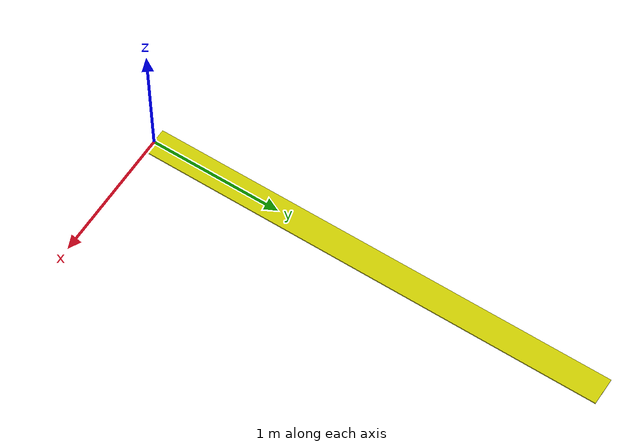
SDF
<?xml version="1.0" ?>
<sdf version="1.6">
  <model name="my_pipe">
    <static>true</static>

    <link name="link">
      <visual name="visual">
        <geometry>
          <mesh>
            <uri>model://pipe_main/meshes/pipe_main.dae</uri>
            <scale>1 1 1</scale>
          </mesh>
        </geometry>
      </visual>

      <collision name="collision">
        <geometry>
          <mesh>
            <uri>model://pipe_main/meshes/pipe_main.dae</uri>
            <scale>1 1 1</scale>
          </mesh>
        </geometry>
      </collision>
    </link>

  </model>
</sdf>
